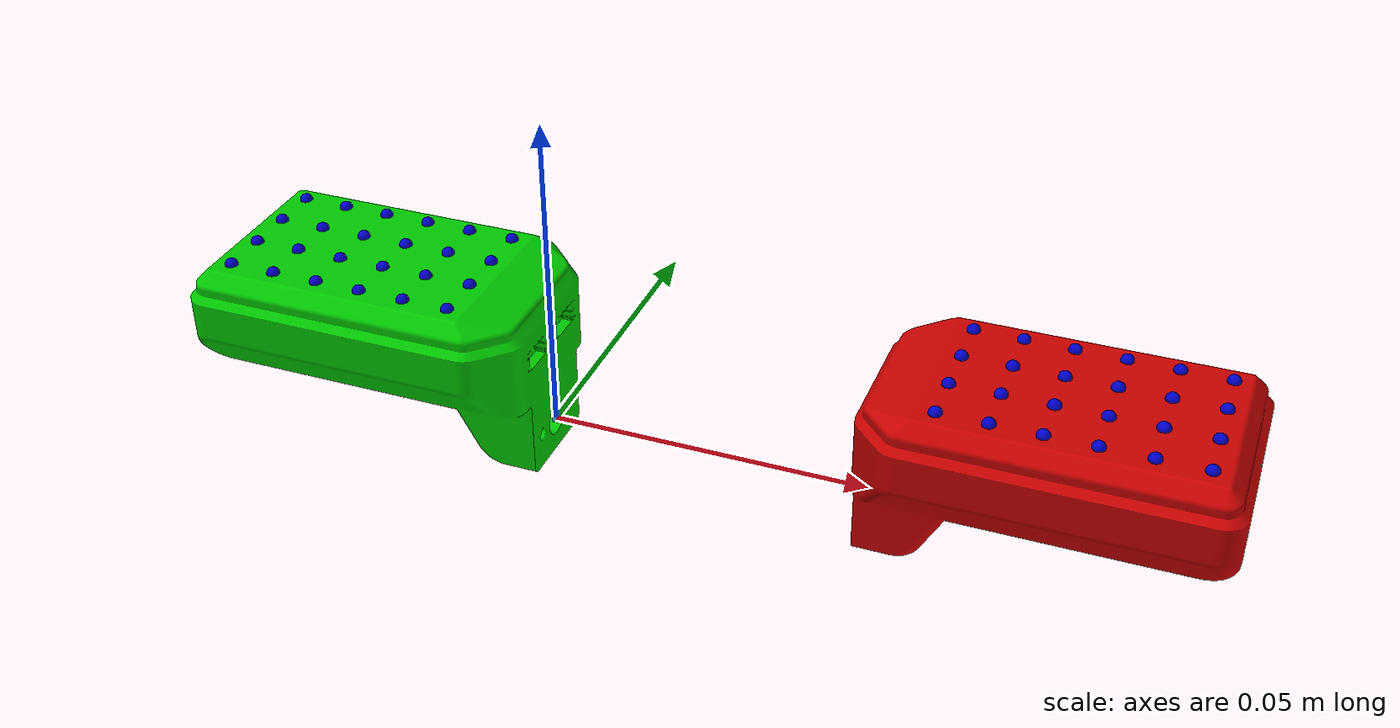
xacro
<?xml version="1.0"?>
<robot xmlns:xacro="http://www.ros.org/wiki/xacro" name="uSPr2F_2modules">
  <xacro:arg name="use_ros2_control" default="false" />
  <xacro:property name="use_ros2_control" value="$(arg use_ros2_control)" />

  <xacro:include filename="$(find xela_models)/urdf/materials.xacro" />
  <xacro:include filename="$(find xela_models)/urdf/taxel_n.xacro" />

  <xacro:include filename="$(find xela_models)/urdf/uSPr2F.xacro" />

	<link name="world" />

	<joint name="fixed" type="fixed">
		<parent link="world" />
		<child link="x_taxel_viz" />
	</joint>

	<link name="x_taxel_viz">
		<visual>
			<origin xyz="0.0 0.0 0.0" rpy="0 0 0"/>
      <geometry>
        <box size="0.001 0.001 0.001"/>
      </geometry>
		</visual>
	</link>

  <xacro:uSPr2F  	sequence="'01'" col="green" parent="x_taxel_viz" taxels="1" x="0" y="0" rz="180" />
  <xacro:uSPr2F  	sequence="'02'" col="red" parent="x_taxel_viz" taxels="1" x="0.05" y="0" />

  <xacro:if value="${use_ros2_control}">
    <ros2_control name="xela_taxel_fake_system" type="system">
      <hardware>
        <plugin>fake_components/GenericSystem</plugin>
      </hardware>
      <joint name="x_taxel_01_uSPa46_01_joint">
        <command_interface name="position"/>
        <state_interface name="position"/>
      </joint>
      <joint name="x_taxel_01_uSPa46_02_joint">
        <command_interface name="position"/>
        <state_interface name="position"/>
      </joint>
      <joint name="x_taxel_01_uSPa46_03_joint">
        <command_interface name="position"/>
        <state_interface name="position"/>
      </joint>
      <joint name="x_taxel_01_uSPa46_04_joint">
        <command_interface name="position"/>
        <state_interface name="position"/>
      </joint>
      <joint name="x_taxel_01_uSPa46_05_joint">
        <command_interface name="position"/>
        <state_interface name="position"/>
      </joint>
      <joint name="x_taxel_01_uSPa46_06_joint">
        <command_interface name="position"/>
        <state_interface name="position"/>
      </joint>
      <joint name="x_taxel_01_uSPa46_07_joint">
        <command_interface name="position"/>
        <state_interface name="position"/>
      </joint>
      <joint name="x_taxel_01_uSPa46_08_joint">
        <command_interface name="position"/>
        <state_interface name="position"/>
      </joint>
      <joint name="x_taxel_01_uSPa46_09_joint">
        <command_interface name="position"/>
        <state_interface name="position"/>
      </joint>
      <joint name="x_taxel_01_uSPa46_10_joint">
        <command_interface name="position"/>
        <state_interface name="position"/>
      </joint>
      <joint name="x_taxel_01_uSPa46_11_joint">
        <command_interface name="position"/>
        <state_interface name="position"/>
      </joint>
      <joint name="x_taxel_01_uSPa46_12_joint">
        <command_interface name="position"/>
        <state_interface name="position"/>
      </joint>
      <joint name="x_taxel_01_uSPa46_13_joint">
        <command_interface name="position"/>
        <state_interface name="position"/>
      </joint>
      <joint name="x_taxel_01_uSPa46_14_joint">
        <command_interface name="position"/>
        <state_interface name="position"/>
      </joint>
      <joint name="x_taxel_01_uSPa46_15_joint">
        <command_interface name="position"/>
        <state_interface name="position"/>
      </joint>
      <joint name="x_taxel_01_uSPa46_16_joint">
        <command_interface name="position"/>
        <state_interface name="position"/>
      </joint>
      <joint name="x_taxel_01_uSPa46_17_joint">
        <command_interface name="position"/>
        <state_interface name="position"/>
      </joint>
      <joint name="x_taxel_01_uSPa46_18_joint">
        <command_interface name="position"/>
        <state_interface name="position"/>
      </joint>
      <joint name="x_taxel_01_uSPa46_19_joint">
        <command_interface name="position"/>
        <state_interface name="position"/>
      </joint>
      <joint name="x_taxel_01_uSPa46_20_joint">
        <command_interface name="position"/>
        <state_interface name="position"/>
      </joint>
      <joint name="x_taxel_01_uSPa46_21_joint">
        <command_interface name="position"/>
        <state_interface name="position"/>
      </joint>
      <joint name="x_taxel_01_uSPa46_22_joint">
        <command_interface name="position"/>
        <state_interface name="position"/>
      </joint>
      <joint name="x_taxel_01_uSPa46_23_joint">
        <command_interface name="position"/>
        <state_interface name="position"/>
      </joint>
      <joint name="x_taxel_01_uSPa46_24_joint">
        <command_interface name="position"/>
        <state_interface name="position"/>
      </joint>
      <joint name="x_taxel_02_uSPa46_01_joint">
        <command_interface name="position"/>
        <state_interface name="position"/>
      </joint>
      <joint name="x_taxel_02_uSPa46_02_joint">
        <command_interface name="position"/>
        <state_interface name="position"/>
      </joint>
      <joint name="x_taxel_02_uSPa46_03_joint">
        <command_interface name="position"/>
        <state_interface name="position"/>
      </joint>
      <joint name="x_taxel_02_uSPa46_04_joint">
        <command_interface name="position"/>
        <state_interface name="position"/>
      </joint>
      <joint name="x_taxel_02_uSPa46_05_joint">
        <command_interface name="position"/>
        <state_interface name="position"/>
      </joint>
      <joint name="x_taxel_02_uSPa46_06_joint">
        <command_interface name="position"/>
        <state_interface name="position"/>
      </joint>
      <joint name="x_taxel_02_uSPa46_07_joint">
        <command_interface name="position"/>
        <state_interface name="position"/>
      </joint>
      <joint name="x_taxel_02_uSPa46_08_joint">
        <command_interface name="position"/>
        <state_interface name="position"/>
      </joint>
      <joint name="x_taxel_02_uSPa46_09_joint">
        <command_interface name="position"/>
        <state_interface name="position"/>
      </joint>
      <joint name="x_taxel_02_uSPa46_10_joint">
        <command_interface name="position"/>
        <state_interface name="position"/>
      </joint>
      <joint name="x_taxel_02_uSPa46_11_joint">
        <command_interface name="position"/>
        <state_interface name="position"/>
      </joint>
      <joint name="x_taxel_02_uSPa46_12_joint">
        <command_interface name="position"/>
        <state_interface name="position"/>
      </joint>
      <joint name="x_taxel_02_uSPa46_13_joint">
        <command_interface name="position"/>
        <state_interface name="position"/>
      </joint>
      <joint name="x_taxel_02_uSPa46_14_joint">
        <command_interface name="position"/>
        <state_interface name="position"/>
      </joint>
      <joint name="x_taxel_02_uSPa46_15_joint">
        <command_interface name="position"/>
        <state_interface name="position"/>
      </joint>
      <joint name="x_taxel_02_uSPa46_16_joint">
        <command_interface name="position"/>
        <state_interface name="position"/>
      </joint>
      <joint name="x_taxel_02_uSPa46_17_joint">
        <command_interface name="position"/>
        <state_interface name="position"/>
      </joint>
      <joint name="x_taxel_02_uSPa46_18_joint">
        <command_interface name="position"/>
        <state_interface name="position"/>
      </joint>
      <joint name="x_taxel_02_uSPa46_19_joint">
        <command_interface name="position"/>
        <state_interface name="position"/>
      </joint>
      <joint name="x_taxel_02_uSPa46_20_joint">
        <command_interface name="position"/>
        <state_interface name="position"/>
      </joint>
      <joint name="x_taxel_02_uSPa46_21_joint">
        <command_interface name="position"/>
        <state_interface name="position"/>
      </joint>
      <joint name="x_taxel_02_uSPa46_22_joint">
        <command_interface name="position"/>
        <state_interface name="position"/>
      </joint>
      <joint name="x_taxel_02_uSPa46_23_joint">
        <command_interface name="position"/>
        <state_interface name="position"/>
      </joint>
      <joint name="x_taxel_02_uSPa46_24_joint">
        <command_interface name="position"/>
        <state_interface name="position"/>
      </joint>
    </ros2_control>
  </xacro:if>
</robot>

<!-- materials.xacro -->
<robot xmlns:xacro="http://www.ros.org/wiki/xacro" name="materials">

  <!-- Rviz colors -->
  <material name="black">
    <color rgba="0.1 0.1 0.1 1.0"/>
  </material>

  <material name="blue">
    <color rgba="0.0 0.0 0.8 1.0"/>
  </material>

  <material name="green">
    <color rgba="0.0 0.8 0.0 1.0"/>
  </material>

  <material name="grey">
    <color rgba="0.2 0.2 0.2 1.0"/>
  </material>

  <material name="orange">
    <color rgba="${255/255} ${108/255} ${10/255} 1.0"/>
  </material>

  <material name="brown">
    <color rgba="${222/255} ${207/255} ${195/255} 1.0"/>
  </material>

  <material name="red">
    <color rgba="0.8 0.0 0.0 1.0"/>
  </material>

  <material name="white">
    <color rgba="1.0 1.0 1.0 1.0"/>
  </material>
</robot>

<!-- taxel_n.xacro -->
<robot xmlns:xacro="http://www.ros.org/wiki/xacro" name="xela_taxel">

  <xacro:macro name="taxel_n" params="sequence parent x:=0.0 y:=0.0 z:=0.0 rx:=0.0 ry:=0.0 rz:=0.0 col:='blue' zmod:=0.0 sensor_collision:=0 sensor_inertial:=0">

    <joint name="${sequence}_joint" type="prismatic">
      <origin xyz="${x} ${y} ${z}" rpy="${radians(rx)} ${radians(ry)} ${radians(rz)}"/>
      <parent link="${parent}"/>
      <child link="${sequence}_link"/>
      <axis xyz="0 0 1"/>
      <limit effort="100.0" lower="${-0.001-zmod}" upper="0.000" velocity="0.5"/>
    </joint>

    <link name="${sequence}_link">
      <visual>
        <geometry>
          <sphere radius="0.001"/>
        </geometry>
        <origin xyz="0.0 0.0 0.0" rpy="0 0 0"/>
        <material name="${col}"/>
      </visual>
      <xacro:if value="${sensor_collision}">
        <collision>
          <origin xyz="0.0 0.0 0.0" rpy="0 0 0"/>
          <geometry>
            <sphere radius="0.001"/>
          </geometry>
        </collision>
      </xacro:if>
      <xacro:if value="${sensor_inertial}">
        <inertial>
          <mass value="0.0001" />
          <origin xyz="0.0 0.0 0.0" rpy="0 0 0"/>
          <inertia ixx="0.0000006666667" ixy="0.0" ixz="0.0" iyy="0.0000006666667" iyz="0.0" izz="0.0000006666667"/>
        </inertial>
      </xacro:if>

    </link>

    <gazebo reference="${sequence}_link">
        <material>Gazebo/Blue</material>
    </gazebo>

  </xacro:macro>

  <xacro:macro name="taxelntest" params="sequence parent x:=0.0 y:=0.0 z:=0.0 rx:=0.0 ry:=0.0 rz:=0.0">
    <xacro:taxel_n sequence="${sequence}A"  x="${x}" y="${y}" z="${z}" rx="${rx}" ry="${ry}" rz="${rz}" parent="${parent}" />
    <xacro:taxel_n sequence="${sequence}B"  x="${x}" y="${y}" z="${z}" rx="${rx}" ry="${ry}" rz="${rz}" parent="${parent}" col="red" zmod="-0.001" />
  </xacro:macro>

</robot>

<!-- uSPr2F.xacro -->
<robot name="uSPr2F" xmlns:xacro="http://www.ros.org/wiki/xacro">

  <xacro:arg name="sensor_prefix" default="x_taxel_" />
  <xacro:arg name="base_prefix" default="x_base_" />

  <!-- uSPr eF2 model -->
  <xacro:macro name="uSPr2F" params="sequence parent x:=0.0 y:=0.0 z:=0.0 rx:=0.0 ry:=0.0 rz:=0.0 col:='blue' body:=1 taxels:=1 skipinertia:=0 xoff=0.004 yoff=0.018 zoff=0.0235 txstep=0.00724 tystep=0.00717 standalone:=0">
    <xacro:if value="${standalone == 1}">
      <xacro:include filename="$(find xela_models)/urdf/materials.xacro" />
      <xacro:include filename="$(find xela_models)/urdf/taxel_n.xacro" />
    </xacro:if>

   <xacro:property name="initial_positions_file" default="$(arg initial_positions_file)"/>

    <joint name="$(arg base_prefix)${sequence}_uSPr2F_fixed" type="fixed">
      <origin xyz="${x} ${y} ${z}" rpy="${radians(rx)} ${radians(ry)} ${radians(rz)}"/>
      <parent link="${parent}" />
      <child link="$(arg base_prefix)${sequence}_uSPr2F_link" />
    </joint>
    <link name="$(arg base_prefix)${sequence}_uSPr2F_link">
      <collision>
        <origin xyz="0 0 0" rpy="0 1.57 1.57" />
        <geometry>
          <mesh filename="package://xela_models/mesh/uspref2.stl" scale="0.001 0.001 0.001"/>
        </geometry>
      </collision>
      <xacro:if value="${body == 1}">
        <visual>
          <origin xyz="0 0 0" rpy="0 1.57 1.57" />
          <geometry>
            <mesh filename="package://xela_models/mesh/uspref2.stl" scale="0.001 0.001 0.001"/>
          </geometry>
          <material name="${col}"/>
        </visual>
        <xacro:unless value="${skipinertia == 1}">
          <inertial>
            <mass value="0.0108" />
            <origin xyz="0 0 0" rpy="0 0 0"/>
            <inertia ixx="1.11e-07" ixy="0.0" ixz="0.0" iyy="2.97e-07" iyz="0.0" izz="4.03e-07" />
          </inertial>
        </xacro:unless>
      </xacro:if>
    </link>

    <gazebo reference="$(arg base_prefix)${sequence}_uSPr2F_link">
      <material>Gazebo/Red</material>
    </gazebo>

    <xacro:if value="${taxels == 1}">
      <xacro:taxel_n sequence="$(arg sensor_prefix)${sequence}_uSPa46_01" x="${1*txstep+xoff}" y="${4*tystep-yoff}" z="${zoff}" parent="$(arg base_prefix)${sequence}_uSPr2F_link" />
      <xacro:taxel_n sequence="$(arg sensor_prefix)${sequence}_uSPa46_02" x="${2*txstep+xoff}" y="${4*tystep-yoff}" z="${zoff}" parent="$(arg base_prefix)${sequence}_uSPr2F_link" />
      <xacro:taxel_n sequence="$(arg sensor_prefix)${sequence}_uSPa46_03" x="${3*txstep+xoff}" y="${4*tystep-yoff}" z="${zoff}" parent="$(arg base_prefix)${sequence}_uSPr2F_link" />
      <xacro:taxel_n sequence="$(arg sensor_prefix)${sequence}_uSPa46_04" x="${4*txstep+xoff}" y="${4*tystep-yoff}" z="${zoff}" parent="$(arg base_prefix)${sequence}_uSPr2F_link" />
      <xacro:taxel_n sequence="$(arg sensor_prefix)${sequence}_uSPa46_05" x="${5*txstep+xoff}" y="${4*tystep-yoff}" z="${zoff}" parent="$(arg base_prefix)${sequence}_uSPr2F_link" />
      <xacro:taxel_n sequence="$(arg sensor_prefix)${sequence}_uSPa46_06" x="${6*txstep+xoff}" y="${4*tystep-yoff}" z="${zoff}" parent="$(arg base_prefix)${sequence}_uSPr2F_link" />
      <xacro:taxel_n sequence="$(arg sensor_prefix)${sequence}_uSPa46_07" x="${1*txstep+xoff}" y="${3*tystep-yoff}" z="${zoff}" parent="$(arg base_prefix)${sequence}_uSPr2F_link" />
      <xacro:taxel_n sequence="$(arg sensor_prefix)${sequence}_uSPa46_08" x="${2*txstep+xoff}" y="${3*tystep-yoff}" z="${zoff}" parent="$(arg base_prefix)${sequence}_uSPr2F_link" />
      <xacro:taxel_n sequence="$(arg sensor_prefix)${sequence}_uSPa46_09" x="${3*txstep+xoff}" y="${3*tystep-yoff}" z="${zoff}" parent="$(arg base_prefix)${sequence}_uSPr2F_link" />
      <xacro:taxel_n sequence="$(arg sensor_prefix)${sequence}_uSPa46_10" x="${4*txstep+xoff}" y="${3*tystep-yoff}" z="${zoff}" parent="$(arg base_prefix)${sequence}_uSPr2F_link" />
      <xacro:taxel_n sequence="$(arg sensor_prefix)${sequence}_uSPa46_11" x="${5*txstep+xoff}" y="${3*tystep-yoff}" z="${zoff}" parent="$(arg base_prefix)${sequence}_uSPr2F_link" />
      <xacro:taxel_n sequence="$(arg sensor_prefix)${sequence}_uSPa46_12" x="${6*txstep+xoff}" y="${3*tystep-yoff}" z="${zoff}" parent="$(arg base_prefix)${sequence}_uSPr2F_link" />
      <xacro:taxel_n sequence="$(arg sensor_prefix)${sequence}_uSPa46_13" x="${1*txstep+xoff}" y="${2*tystep-yoff}" z="${zoff}" parent="$(arg base_prefix)${sequence}_uSPr2F_link" />
      <xacro:taxel_n sequence="$(arg sensor_prefix)${sequence}_uSPa46_14" x="${2*txstep+xoff}" y="${2*tystep-yoff}" z="${zoff}" parent="$(arg base_prefix)${sequence}_uSPr2F_link" />
      <xacro:taxel_n sequence="$(arg sensor_prefix)${sequence}_uSPa46_15" x="${3*txstep+xoff}" y="${2*tystep-yoff}" z="${zoff}" parent="$(arg base_prefix)${sequence}_uSPr2F_link" />
      <xacro:taxel_n sequence="$(arg sensor_prefix)${sequence}_uSPa46_16" x="${4*txstep+xoff}" y="${2*tystep-yoff}" z="${zoff}" parent="$(arg base_prefix)${sequence}_uSPr2F_link" />
      <xacro:taxel_n sequence="$(arg sensor_prefix)${sequence}_uSPa46_17" x="${5*txstep+xoff}" y="${2*tystep-yoff}" z="${zoff}" parent="$(arg base_prefix)${sequence}_uSPr2F_link" />
      <xacro:taxel_n sequence="$(arg sensor_prefix)${sequence}_uSPa46_18" x="${6*txstep+xoff}" y="${2*tystep-yoff}" z="${zoff}" parent="$(arg base_prefix)${sequence}_uSPr2F_link" />
      <xacro:taxel_n sequence="$(arg sensor_prefix)${sequence}_uSPa46_19" x="${1*txstep+xoff}" y="${1*tystep-yoff}" z="${zoff}" parent="$(arg base_prefix)${sequence}_uSPr2F_link" />
      <xacro:taxel_n sequence="$(arg sensor_prefix)${sequence}_uSPa46_20" x="${2*txstep+xoff}" y="${1*tystep-yoff}" z="${zoff}" parent="$(arg base_prefix)${sequence}_uSPr2F_link" />
      <xacro:taxel_n sequence="$(arg sensor_prefix)${sequence}_uSPa46_21" x="${3*txstep+xoff}" y="${1*tystep-yoff}" z="${zoff}" parent="$(arg base_prefix)${sequence}_uSPr2F_link" />
      <xacro:taxel_n sequence="$(arg sensor_prefix)${sequence}_uSPa46_22" x="${4*txstep+xoff}" y="${1*tystep-yoff}" z="${zoff}" parent="$(arg base_prefix)${sequence}_uSPr2F_link" />
      <xacro:taxel_n sequence="$(arg sensor_prefix)${sequence}_uSPa46_23" x="${5*txstep+xoff}" y="${1*tystep-yoff}" z="${zoff}" parent="$(arg base_prefix)${sequence}_uSPr2F_link" />
      <xacro:taxel_n sequence="$(arg sensor_prefix)${sequence}_uSPa46_24" x="${6*txstep+xoff}" y="${1*tystep-yoff}" z="${zoff}" parent="$(arg base_prefix)${sequence}_uSPr2F_link" />
    </xacro:if>
  </xacro:macro>

</robot>
